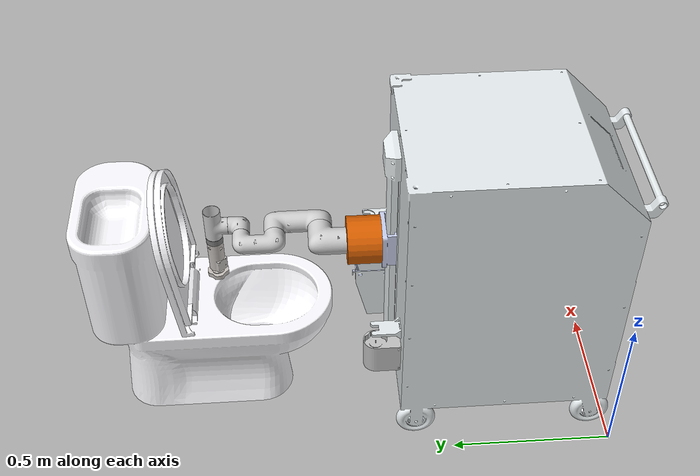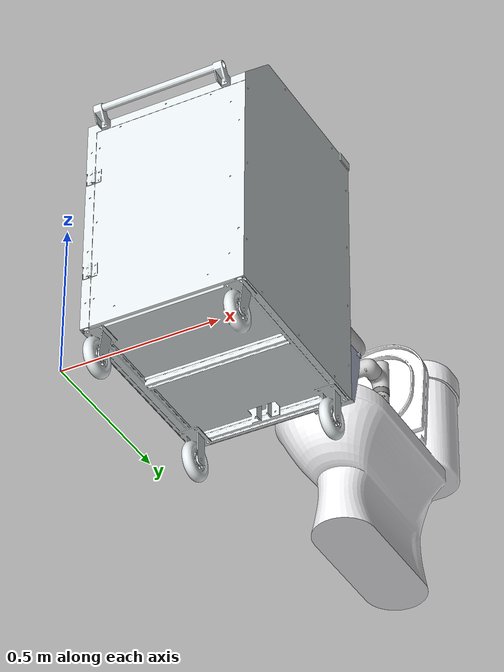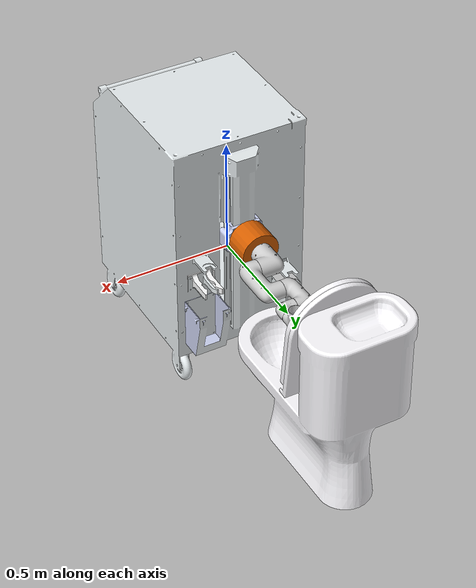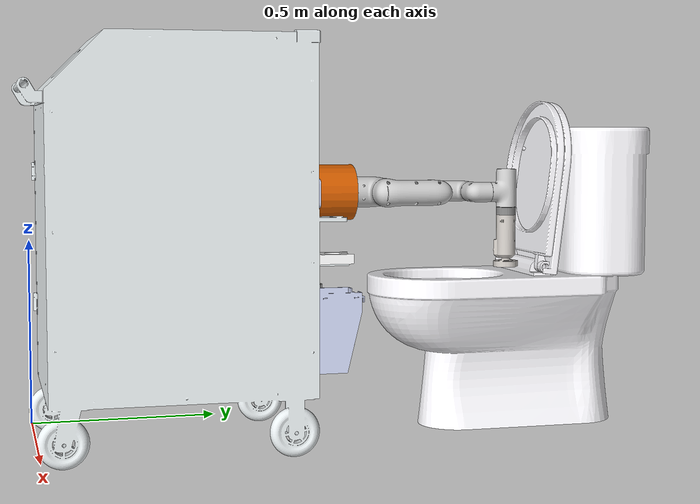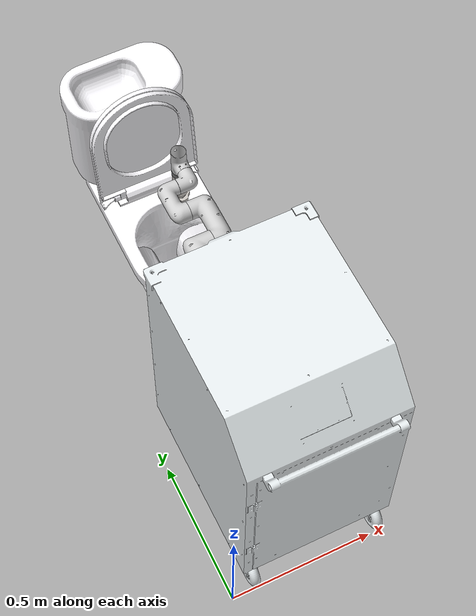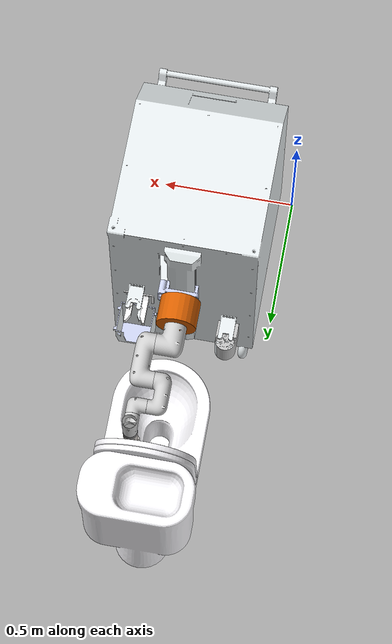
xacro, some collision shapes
<?xml version='1.0' encoding='utf-8'?>
<robot xmlns:xacro="http://ros.org/wiki/xacro" name="mycobot_pro">

  <xacro:macro name="base_arm_macro">
      <xacro:arg name="ros_namespace" default="mycobot_pro"/>
      <xacro:arg name="attach_to" default="robot_arm_mount"/>
      <xacro:arg name="camera_sensor" default="True"/>

      <!-- load base -->
      <xacro:include filename="$(find arm_plus_base_description)/urdf/abluo_urdf_1.xacro"/>

      <!-- load mycobot_pro robot attach to base -->
      <xacro:include filename="$(find arm_plus_base_description)/urdf/mycobot_robot_macro.xacro" />

       <!-- include gazebo transmissions -->
       <xacro:include filename="$(find arm_plus_base_description)/urdf/arm_plus_base.gazebo.xacro"/>
      <xacro:mycobot_pro_robot_macro camera_sensor="$(arg camera_sensor)" attach_to="$(arg attach_to)" xyz="0 0.015 0" rpy="-1.5707 1.5707 0"/>

  </xacro:macro>
  <xacro:base_arm_macro/>

  <xacro:macro name="simulation_models_macro">
    <!-- load toilet bowl -->
    <xacro:include filename="$(find toilet_bowl_model)/urdf/toilet_bowl_model.xacro"/>
    <link name="world_base"/>

    <joint name="toilet_base_to_world" type="fixed">
      <parent link="world_base"/>
      <child link="toilet_bowl_base"/>
      <origin xyz="-0.05 1.55 -0.5" rpy=" 0 0 -1.57"/>
    </joint>

    <joint name="base_link_to_world" type="fixed">
      <parent link="world_base"/>
      <child link="base_link"/>
      <origin xyz="0 0 0.145" rpy="0 0 0"/>

    </joint>
  </xacro:macro>
  <xacro:simulation_models_macro/>

</robot>

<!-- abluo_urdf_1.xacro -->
<robot xmlns:xacro="http://www.ros.org/wiki/xacro" name="abluo_urdf_1">
  <xacro:property name="width" value=".2" />
  <link name="base_link">
    <inertial>
      <origin xyz="0.314368340132374 0.377555022857893 0.400452017692568" rpy="0 0 0" />
      <mass value="30" />
      <inertia ixx="0.54665417885733" ixy="1.4238821137223E-07" ixz="-0.000131159040413172" iyy="0.46363983536376" iyz="-0.00931413578840215" izz="0.256005962598474" />
    </inertial>
    <visual>
      <origin xyz="0 0 0" rpy="0 0 0" />
      <geometry>
        <mesh filename="package://abluo_urdf_1/meshes/base_link.STL" />
      </geometry>
      <material name="">
        <color rgba="0.898039215686275 0.92156862745098 0.929411764705882 1" />
      </material>
    </visual>
    <collision>
      <origin xyz="0 0 0" rpy="0 0 0" />
      <geometry>
        <mesh filename="package://abluo_urdf_1/meshes/base_link.STL" />
      </geometry>
    </collision>
  </link>
  <link name="tool_holder">
    <inertial>
      <origin xyz="-5.4328E-05 0.035446 -0.00021215" rpy="0 0 0" />
      <mass value="0.1248" />
      <inertia ixx="0.0001414" ixy="-1.5081E-07" ixz="1.4383E-09" iyy="0.00012456" iyz="6.236E-07" izz="0.00022858" />
    </inertial>
    <visual>
      <origin xyz="0 0 0" rpy="0 0 0" />
      <geometry>
        <mesh filename="package://abluo_urdf_1/meshes/tool_holder.STL" />
      </geometry>
      <material name="">
        <color rgba="1 1 1 1" />
      </material>
    </visual>
    <collision>
      <origin xyz="0 0 0" rpy="0 0 0" />
      <geometry>
        <mesh filename="package://abluo_urdf_1/meshes/tool_holder.STL" />
      </geometry>
    </collision>
  </link>
  <joint name="tool_holder_to_trolley" type="fixed">
    <origin xyz="0.47032 0.67022 0.33281" rpy="0 0 0" />
    <parent link="base_link" />
    <child link="tool_holder" />
    <axis xyz="0 0 0" />
  </joint>
  <link name="bin">
    <inertial>
      <origin xyz="0.063 -0.071426 0.092008" rpy="0 0 0" />
      <mass value="0.26632" />
      <inertia ixx="0.0014744" ixy="8.8967E-19" ixz="4.6847E-18" iyy="0.0017467" iyz="-6.7797E-05" izz="0.0010769" />
    </inertial>
    <visual>
      <origin xyz="0 0 0" rpy="0 0 0" />
      <geometry>
        <mesh filename="package://abluo_urdf_1/meshes/bin.STL" />
      </geometry>
      <material name="">
        <color rgba="0.79216 0.81961 0.93333 1" />
      </material>
    </visual>
    <collision>
      <origin xyz="0 0 0" rpy="0 0 0" />
      <geometry>
        <mesh filename="package://abluo_urdf_1/meshes/bin.STL" />
      </geometry>
    </collision>
  </link>
  <joint name="bin_to_trolley" type="fixed">
    <origin xyz="0.41232 0.78622 0.051806" rpy="0 0 0" />
    <parent link="base_link" />
    <child link="bin" />
    <axis xyz="0 0 0" />
  </joint>
  <link name="refill">
    <inertial>
      <origin xyz="-0.099098 -0.032213 0.058669" rpy="0 0 0" />
      <mass value="0.48444" />
      <inertia ixx="0.00085088" ixy="1.1098E-17" ixz="1.6448E-18" iyy="0.00073833" iyz="3.4076E-05" izz="0.00065736" />
    </inertial>
    <visual>
      <origin xyz="0 0 0" rpy="0 0 0" />
      <geometry>
        <mesh filename="package://abluo_urdf_1/meshes/refill.STL" />
      </geometry>
      <material name="">
        <color rgba="0.75294 0.75294 0.75294 1" />
      </material>
    </visual>
    <collision>
      <origin xyz="0 0 0" rpy="0 0 0" />
      <geometry>
        <mesh filename="package://abluo_urdf_1/meshes/refill.STL" />
      </geometry>
    </collision>
  </link>
  <joint name="refill_to_trolley" type="fixed">
    <origin xyz="0.23641 0.73898 0.11878" rpy="0 0 0" />
    <parent link="base_link" />
    <child link="refill" />
    <axis xyz="0 0 0" />
  </joint>
  <link name="robot_arm_mount">
    <inertial>
      <origin xyz="0.01059 -0.0039437 -0.002491" rpy="0 0 0" />
      <mass value="0.42315" />
      <inertia ixx="0.00050278" ixy="6.7967E-05" ixz="-1.7444E-05" iyy="0.0011978" iyz="3.9255E-06" izz="0.00077881" />
    </inertial>
    <visual>
      <origin xyz="0 0 0" rpy="0 0 0" />
      <geometry>
        <mesh filename="package://abluo_urdf_1/meshes/robot_arm_mount.STL" />
      </geometry>
      <material name="">
        <color rgba="0.79216 0.81961 0.93333 1" />
      </material>
    </visual>
    <collision>
      <origin xyz="0 0 0" rpy="0 0 0" />
      <geometry>
        <mesh filename="package://abluo_urdf_1/meshes/robot_arm_mount.STL" />
      </geometry>
    </collision>
  </link>
  <joint name="robot_arm_mount_to_actuator" type="fixed">
    <origin xyz="0.30617 0.70397 0.49087" rpy="0 0 0" />
    <parent link="base_link" />
    <child link="robot_arm_mount" />
    <axis xyz="0 0 1" />
    <limit lower="-0.2" upper="0.16" effort="100000" velocity="0.0235" />
  </joint>
</robot>

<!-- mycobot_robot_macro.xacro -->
<robot xmlns:xacro="http://ros.org/wiki/xacro">
  <xacro:macro name="mycobot_pro_robot_macro" params="prefix:='' attach_to:='world' xyz:='0 0 0' rpy:='0 0 0' camera_sensor:=False ">

    <!-- include mycobot relative macros: -->
    <xacro:include filename="$(find arm_plus_base_description)/urdf/320_urdf/mycobot_pro_320.urdf" />
    <xacro:include filename="$(find brush_swapping_stick)/urdf/brush_swapping_stick.urdf"/>

    <!-- add one world link if no 'attach_to' specified  -->
    <xacro:if value="${attach_to == 'world'}">
      <link name="world"/>
    </xacro:if>

    <joint name="${attach_to}_base_joint" type="fixed">
      <parent link="${attach_to}" />
      <child link = "base" />
      <origin xyz="${xyz}" rpy="${rpy}" />
    </joint>

    <joint name="brush_swapping_stick_joint" type="fixed">
      <parent link="link6"/>
      <child link="brush_swapping_stick_link"/>>
      <origin xyz="0 0 0" rpy="-1.57 0 1.57"/>
    </joint>

  </xacro:macro>
</robot>

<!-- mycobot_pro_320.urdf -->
<robot xmlns:xacro="http://www.ros.org/wiki/xacro" name="mycobot_pro">
  <xacro:property name="width" value=".2" />

  <link name="base">
    <visual>
      <geometry>
        <mesh filename="package://mycobot_description/urdf/320_urdf/base.dae" />
      </geometry>
      <origin xyz="0 0 0 " rpy=" 0 0 0" />
    </visual>
    <collision>
      <origin xyz="0 0 0.05 " rpy=" 0 0 0" />
      <geometry>
        <cylinder length="0.102" radius="0.0725" />
      </geometry>
    </collision>
    <inertial>
      <mass value="0.92353" />
      <inertia ixx="1.0" ixy="0.0" ixz="0.0" iyy="1.0" iyz="0.0" izz="1.0" />
    </inertial>
  </link>

  <link name="link1">
    <visual>
      <geometry>
        <mesh filename="package://mycobot_description/urdf/320_urdf/link1.dae" />
      </geometry>
      <origin xyz="0 0 0 " rpy=" 0 0 0" />
    </visual>
    <collision>
      <origin xyz="0 0 -0.02 " rpy=" 0 0 0" />
      <geometry>
        <cylinder length="0.106" radius="0.043" />
      </geometry>
    </collision>
    <inertial>
      <mass value="0.3331" />
      <inertia ixx="1.0" ixy="0.0" ixz="0.0" iyy="1.0" iyz="0.0" izz="1.0" />
    </inertial>
  </link>

  <link name="link2">
    <visual>
      <geometry>
        <mesh filename="package://mycobot_description/urdf/320_urdf/link2.dae" />
      </geometry>
      <origin xyz="0 0 0.0587 " rpy=" 0 0 3.1415926" />
    </visual>
    <collision>
      <origin xyz="0.07 0 0.095 " rpy=" 0 -1.5708 0" />
      <geometry>
        <cylinder length="0.18" radius="0.036" />
      </geometry>
    </collision>
    <inertial>
      <mass value="0.29389" />
      <inertia ixx="1.0" ixy="0.0" ixz="0.0" iyy="1.0" iyz="0.0" izz="1.0" />
    </inertial>
  </link>

  <link name="link3">
    <visual>
      <geometry>
        <mesh filename="package://mycobot_description/urdf/320_urdf/link3.dae" />
      </geometry>
      <origin xyz="0 0 0.038 " rpy=" 0 0 3.1415926" />
    </visual>
    <collision>
      <origin xyz="0.044 0 0 " rpy=" 0 -1.5708 0" />
      <geometry>
        <cylinder length="0.14" radius="0.0305" />
      </geometry>
    </collision>
    <inertial>
      <mass value="0.41605" />
      <inertia ixx="1.0" ixy="0.0" ixz="0.0" iyy="1.0" iyz="0.0" izz="1.0" />
    </inertial>
  </link>

  <link name="link4">
    <visual>
      <geometry>
        <mesh filename="package://mycobot_description/urdf/320_urdf/link4.dae" />
      </geometry>
      <origin xyz="0 -0.001 0 " rpy=" 0 0 0" />
    </visual>
    <collision>
      <origin xyz="0.0 -0.014 0 " rpy=" 0 -1.5708 1.5708" />
      <geometry>
        <cylinder length="0.083" radius="0.029" />
      </geometry>
    </collision>
    <inertial>
      <mass value="0.18777" />
      <inertia ixx="1.0" ixy="0.0" ixz="0.0" iyy="1.0" iyz="0.0" izz="1.0" />
    </inertial>
  </link>

  <link name="link5">
    <visual>
      <geometry>
        <mesh filename="package://mycobot_description/urdf/320_urdf/link5.dae" />
      </geometry>
      <origin xyz="0 0.002  0 " rpy=" 0  0 3.1415926" />
    </visual>
    <collision>
      <origin xyz="0 -0.01 0 " rpy=" 1.5708 1.5708 0" />
      <geometry>
        <cylinder length="0.0849" radius="0.029" />
      </geometry>
    </collision>
    <inertial>
      <mass value="0.22519" />
      <inertia ixx="1.0" ixy="0.0" ixz="0.0" iyy="1.0" iyz="0.0" izz="1.0" />
    </inertial>
  </link>

  <link name="link6">
    <visual>
      <geometry>
        <cylinder length="0.02" radius="0.026" />
      </geometry>
      <material name="grey">
        <color rgba="0.5 0.5 0.5 1" />
      </material>
      <origin xyz="0 0 -0.01 " rpy=" 0 0 0" />
    </visual>
    <collision>
      <origin xyz="0.0 0 -0.01 " rpy=" 0 0 0" />
      <geometry>
        <cylinder length="0.0225" radius="0.026" />
      </geometry>
    </collision>
    <inertial>
      <mass value="0.060102" />
      <inertia ixx="1.0" ixy="0.0" ixz="0.0" iyy="1.0" iyz="0.0" izz="1.0" />
    </inertial>
  </link>

  <joint name="joint2_to_joint1" type="revolute">
    <axis xyz="0 0 1" />
    <limit lower="-2.97" upper="2.97" effort="1000" velocity="3.14" />
    <parent link="base" />
    <child link="link1" />
    <origin xyz="0 0 0.17846" rpy="0 0 0" />
  </joint>

  <joint name="joint3_to_joint2" type="revolute">
    <axis xyz="0 0 1" />
    <limit lower="-2.79" upper="2.79" effort="1000" velocity="3.14" />
    <parent link="link1" />
    <child link="link2" />
    <origin xyz="0 0  0" rpy="0 -1.57080  1.57080" />
  </joint>

  <joint name="joint4_to_joint3" type="revolute">
    <axis xyz=" 0 0 1" />
    <limit lower="-2.79" upper="2.79" effort="1000" velocity="3.14" />
    <parent link="link2" />
    <child link="link3" />
    <origin xyz="0.13635 0 0   " rpy="0 0 0" />
  </joint>

  <joint name="joint5_to_joint4" type="revolute">
    <axis xyz=" 0 0 1" />
    <limit lower="-2.79" upper="2.79" effort="1000" velocity="3.14" />
    <parent link="link3" />
    <child link="link4" />
    <origin xyz="0.1 0  0.090" rpy="0 0 1.57080" />
  </joint>

  <joint name="joint6_to_joint5" type="revolute">
    <axis xyz="0 0 1" />
    <limit lower="-2.97" upper="2.97" effort="1000" velocity="3.14" />
    <parent link="link4" />
    <child link="link5" />
    <origin xyz="0 -0.08515 0" rpy="1.57080 -1.57080 0" />
  </joint>

  <joint name="joint6output_to_joint6" type="revolute">
    <axis xyz="0 0 1" />
    <limit lower="-3.05" upper="3.05" effort="1000" velocity="3.14" />
    <parent link="link5" />
    <child link="link6" />
    <origin xyz="0 0.06 0" rpy="-1.57080 0 0 " />
  </joint>

  <!-- Transmission -->
</robot>

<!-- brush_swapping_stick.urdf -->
<robot xmlns:xacro="http://www.ros.org/wiki/xacro" name="brush_swapping_stick">
  <xacro:property name="width" value=".2" />
  <link name="brush_swapping_stick_link">
    <inertial>
      <origin xyz="0.00089899 -0.058654 0.0010125" rpy="0 0 0" />
      <mass value="0.14232" />
      <inertia ixx="4.7311E-05" ixy="2.2786E-08" ixz="-2.0986E-07" iyy="4.1798E-05" iyz="5.5679E-08" izz="4.7366E-05" />
    </inertial>
    <visual>
      <origin xyz="0 0 0" rpy="0 0 0" />
      <geometry>
        <mesh filename="package://brush_swapping_stick/meshes/base_link.STL" />
      </geometry>
      <material name="">
        <color rgba="0.77647 0.75686 0.73725 1" />
      </material>
    </visual>
    <collision>
      <origin xyz="0 0 0" rpy="0 0 0" />
      <geometry>
        <mesh filename="package://brush_swapping_stick/meshes/base_link.STL" />
      </geometry>
    </collision>
  </link>
</robot>

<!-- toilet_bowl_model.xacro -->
<robot xmlns:xacro="http://www.ros.org/wiki/xacro" name="toilet_bowl_model">
  <xacro:property name="width" value=".2" />

  <link name="toilet_bowl_base">
    <inertial>
      <origin xyz="0.168137290218174 0.37111271971656 0.900957664124744" rpy="0 0 0" />
      <mass value="147.602779533608" />
      <inertia ixx="3.30913106412552" ixy="0.00231508396789663" ixz="0.0427132161406999" iyy="4.12059766074393" iyz="-0.0411704248806174" izz="3.24537569825029" />
    </inertial>
    <visual>
      <origin xyz="0 0 0" rpy="0 0 0" />
      <geometry>
        <mesh filename="package://toilet_bowl_model/meshes/base_link.STL" />
      </geometry>
      <material name="">
        <color rgba="0.988235294117647 0.984313725490196 1 1" />
      </material>
    </visual>
    <collision>
      <origin xyz="0 0 0" rpy="0 0 0" />
      <geometry>
        <mesh filename="package://toilet_bowl_model/meshes/base_link.STL" />
      </geometry>
    </collision>
  </link>
  <link name="toilet_seat">
    <inertial>
      <origin xyz="-0.19613 0.177 0.0084034" rpy="0 0 0" />
      <mass value="1.1419" />
      <inertia ixx="0.016838" ixy="1.2216E-10" ixz="0.00017976" iyy="0.021366" iyz="1.4356E-09" izz="0.03813" />
    </inertial>
    <visual>
      <origin xyz="0 0 0" rpy="0 0 0" />
      <geometry>
        <mesh filename="package://toilet_bowl_model/meshes/toilet_seat.STL" />
      </geometry>
      <material name="">
        <color rgba="0.98824 0.98431 1 1" />
      </material>
    </visual>
    <collision>
      <origin xyz="0 0 0" rpy="0 0 0" />
      <geometry>
        <mesh filename="package://toilet_bowl_model/meshes/toilet_seat.STL" />
      </geometry>
    </collision>
  </link>
  <joint name="toilet_seat_to_base" type="fixed">
    <origin xyz="0.24103 0.19269 0.9391" rpy="0 1.4486 0" />
    <parent link="toilet_bowl_base" />
    <child link="toilet_seat" />
    <axis xyz="0 -1 0" />
    <limit lower="0" upper="-1.692" effort="0" velocity="0" />
  </joint>
  <link name="toilet_cover">
    <inertial>
      <origin xyz="-0.177 0.035959 -0.18976" rpy="0 0 0" />
      <mass value="2.5494" />
      <inertia ixx="0.040607" ixy="-2.3416E-09" ixz="-1.3977E-07" iyy="0.0667" iyz="0.0050064" izz="0.027431" />
    </inertial>
    <visual>
      <origin xyz="0 0 0" rpy="0 0 0" />
      <geometry>
        <mesh filename="package://toilet_bowl_model/meshes/toilet_cover.STL" />
      </geometry>
      <material name="ceramic">
        <color rgba="0.98824 0.98431 1 1" />
      </material>
    </visual>
    <collision>
      <origin xyz="0 0 0" rpy="0 0 0" />
      <geometry>
        <mesh filename="package://toilet_bowl_model/meshes/toilet_cover.STL" />
      </geometry>
    </collision>
  </link>
  <joint name="toilet_cover_to_base" type="fixed">
    <origin xyz="0.24103 0.19269 0.9391" rpy="3.1416 0 -1.5708" />
    <parent link="toilet_bowl_base" />
    <child link="toilet_cover" />
    <axis xyz="1 0 0" />
    <limit lower="0" upper="-1.692" effort="0" velocity="0" />
  </joint>
</robot>
